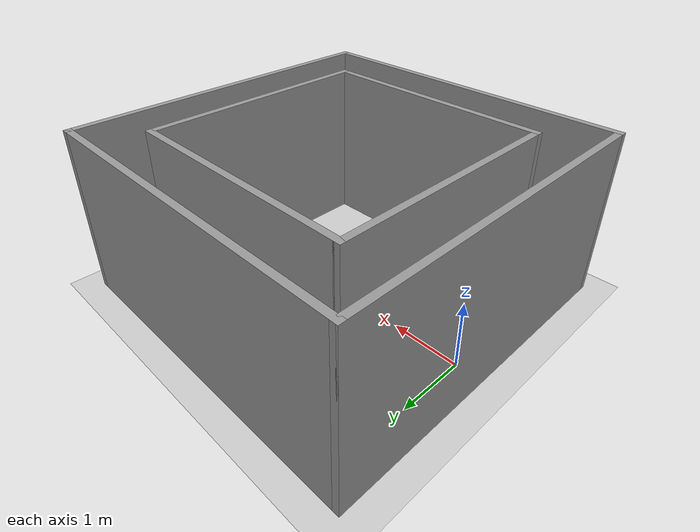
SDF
<sdf version="1.7">
 <world name="default">
  <light name="sun" type="directional">
   <pose>0 0 10 0 -0 0</pose>
   <diffuse>0.8 0.8 0.8 1</diffuse>
   <specular>0.2 0.2 0.2 1</specular>
   <attenuation>
    <range>1000</range>
    <constant>0.9</constant>
    <linear>0.01</linear>
    <quadratic>0.001</quadratic>
   </attenuation>
   <direction>-0.5 0.1 -0.9</direction>
   <spot><inner_angle>0</inner_angle><outer_angle>0</outer_angle><falloff>0</falloff></spot>
  </light>
  <model name="ground_plane">
   <static>1</static>
   <link name="link">
    <collision name="collision">
     <geometry><plane><normal>0 0 1</normal><size>100 100</size></plane></geometry>
     <surface><friction><ode><mu>100</mu><mu2>50</mu2></ode></friction></surface>
    </collision>
    <visual name="visual">
     <cast_shadows>0</cast_shadows>
     <geometry><plane><normal>0 0 1</normal><size>100 100</size></plane></geometry>
     <material>
      <script><uri>file://media/materials/scripts/gazebo.material</uri><name>Gazebo/Grey</name></script>
     </material>
    </visual>
   </link>
  </model>
  <gravity>0 0 -9.8</gravity>
  <magnetic_field>6e-06 2.3e-05 -4.2e-05</magnetic_field>
  <atmosphere type="adiabatic"/>
  <physics type="ode">
   <max_step_size>0.001</max_step_size>
   <real_time_factor>1</real_time_factor>
   <real_time_update_rate>1000</real_time_update_rate>
  </physics>
  <scene><ambient>0.4 0.4 0.4 1</ambient><background>0.7 0.7 0.7 1</background><shadows>1</shadows></scene>
  <spherical_coordinates>
   <surface_model>EARTH_WGS84</surface_model>
   <latitude_deg>0</latitude_deg>
   <longitude_deg>0</longitude_deg>
   <elevation>0</elevation>
   <heading_deg>0</heading_deg>
  </spherical_coordinates>
  <model name="loop">
   <link name="Wall_0">
    <pose>0 2.5 0 0 -0 0</pose>
    <inertial>
     <mass>1</mass>
     <inertia><ixx>1</ixx><ixy>0</ixy><ixz>0</ixz><iyy>1</iyy><iyz>0</iyz><izz>1</izz></inertia>
    </inertial>
    <visual name="Wall_0_Visual">
     <pose>0 0 1.25 0 -0 0</pose>
     <geometry><box><size>5.1 0.1 2.5</size></box></geometry>
     <material>
      <script><uri>file://media/materials/scripts/gazebo.material</uri><name>Gazebo/Grey</name></script>
      <ambient>1 1 1 1</ambient>
      <shader type="pixel"><normal_map>__default__</normal_map></shader>
      <diffuse>0.7 0.7 0.7 1</diffuse>
      <specular>0.01 0.01 0.01 1</specular>
      <emissive>0 0 0 1</emissive>
     </material>
     <meta><layer>0</layer></meta>
    </visual>
    <collision name="Wall_0_Collision">
     <pose>0 0 1.25 0 -0 0</pose>
     <geometry><box><size>5.1 0.1 2.5</size></box></geometry>
     <surface>
      <friction>
       <ode><mu>1</mu><mu2>1</mu2><fdir1>0 0 0</fdir1><slip1>0</slip1><slip2>0</slip2></ode>
       <torsional>
        <coefficient>1</coefficient>
        <patch_radius>0</patch_radius>
        <surface_radius>0</surface_radius>
        <use_patch_radius>1</use_patch_radius>
        <ode><slip>0</slip></ode>
       </torsional>
      </friction>
      <bounce><restitution_coefficient>0</restitution_coefficient><threshold>1e+06</threshold></bounce>
      <contact>
       <collide_without_contact>0</collide_without_contact>
       <collide_without_contact_bitmask>1</collide_without_contact_bitmask>
       <collide_bitmask>1</collide_bitmask>
       <ode>
        <soft_cfm>0</soft_cfm>
        <soft_erp>0.2</soft_erp>
        <kp>1e+13</kp>
        <kd>1</kd>
        <max_vel>0.01</max_vel>
        <min_depth>0</min_depth>
       </ode>
       <bullet>
        <split_impulse>1</split_impulse>
        <split_impulse_penetration_threshold>-0.01</split_impulse_penetration_threshold>
        <soft_cfm>0</soft_cfm>
        <soft_erp>0.2</soft_erp>
        <kp>1e+13</kp>
        <kd>1</kd>
       </bullet>
      </contact>
     </surface>
    </collision>
   </link>
   <link name="Wall_1">
    <pose>2.5 0 0 0 0 -1.5708</pose>
    <inertial>
     <mass>1</mass>
     <inertia><ixx>1</ixx><ixy>0</ixy><ixz>0</ixz><iyy>1</iyy><iyz>0</iyz><izz>1</izz></inertia>
    </inertial>
    <visual name="Wall_1_Visual">
     <pose>0 0 1.25 0 -0 0</pose>
     <geometry><box><size>5.1 0.1 2.5</size></box></geometry>
     <material>
      <script><uri>file://media/materials/scripts/gazebo.material</uri><name>Gazebo/Grey</name></script>
      <ambient>1 1 1 1</ambient>
      <shader type="pixel"><normal_map>__default__</normal_map></shader>
      <diffuse>0.7 0.7 0.7 1</diffuse>
      <specular>0.01 0.01 0.01 1</specular>
      <emissive>0 0 0 1</emissive>
     </material>
     <meta><layer>0</layer></meta>
    </visual>
    <collision name="Wall_1_Collision">
     <pose>0 0 1.25 0 -0 0</pose>
     <geometry><box><size>5.1 0.1 2.5</size></box></geometry>
     <surface>
      <friction>
       <ode><mu>1</mu><mu2>1</mu2><fdir1>0 0 0</fdir1><slip1>0</slip1><slip2>0</slip2></ode>
       <torsional>
        <coefficient>1</coefficient>
        <patch_radius>0</patch_radius>
        <surface_radius>0</surface_radius>
        <use_patch_radius>1</use_patch_radius>
        <ode><slip>0</slip></ode>
       </torsional>
      </friction>
      <bounce><restitution_coefficient>0</restitution_coefficient><threshold>1e+06</threshold></bounce>
      <contact>
       <collide_without_contact>0</collide_without_contact>
       <collide_without_contact_bitmask>1</collide_without_contact_bitmask>
       <collide_bitmask>1</collide_bitmask>
       <ode>
        <soft_cfm>0</soft_cfm>
        <soft_erp>0.2</soft_erp>
        <kp>1e+13</kp>
        <kd>1</kd>
        <max_vel>0.01</max_vel>
        <min_depth>0</min_depth>
       </ode>
       <bullet>
        <split_impulse>1</split_impulse>
        <split_impulse_penetration_threshold>-0.01</split_impulse_penetration_threshold>
        <soft_cfm>0</soft_cfm>
        <soft_erp>0.2</soft_erp>
        <kp>1e+13</kp>
        <kd>1</kd>
       </bullet>
      </contact>
     </surface>
    </collision>
   </link>
   <link name="Wall_2">
    <pose>0 -2.5 0 0 -0 3.14159</pose>
    <inertial>
     <mass>1</mass>
     <inertia><ixx>1</ixx><ixy>0</ixy><ixz>0</ixz><iyy>1</iyy><iyz>0</iyz><izz>1</izz></inertia>
    </inertial>
    <visual name="Wall_2_Visual">
     <pose>0 0 1.25 0 -0 0</pose>
     <geometry><box><size>5.1 0.1 2.5</size></box></geometry>
     <material>
      <script><uri>file://media/materials/scripts/gazebo.material</uri><name>Gazebo/Grey</name></script>
      <ambient>1 1 1 1</ambient>
      <shader type="pixel"><normal_map>__default__</normal_map></shader>
      <diffuse>0.7 0.7 0.7 1</diffuse>
      <specular>0.01 0.01 0.01 1</specular>
      <emissive>0 0 0 1</emissive>
     </material>
     <meta><layer>0</layer></meta>
    </visual>
    <collision name="Wall_2_Collision">
     <pose>0 0 1.25 0 -0 0</pose>
     <geometry><box><size>5.1 0.1 2.5</size></box></geometry>
     <surface>
      <friction>
       <ode><mu>1</mu><mu2>1</mu2><fdir1>0 0 0</fdir1><slip1>0</slip1><slip2>0</slip2></ode>
       <torsional>
        <coefficient>1</coefficient>
        <patch_radius>0</patch_radius>
        <surface_radius>0</surface_radius>
        <use_patch_radius>1</use_patch_radius>
        <ode><slip>0</slip></ode>
       </torsional>
      </friction>
      <bounce><restitution_coefficient>0</restitution_coefficient><threshold>1e+06</threshold></bounce>
      <contact>
       <collide_without_contact>0</collide_without_contact>
       <collide_without_contact_bitmask>1</collide_without_contact_bitmask>
       <collide_bitmask>1</collide_bitmask>
       <ode>
        <soft_cfm>0</soft_cfm>
        <soft_erp>0.2</soft_erp>
        <kp>1e+13</kp>
        <kd>1</kd>
        <max_vel>0.01</max_vel>
        <min_depth>0</min_depth>
       </ode>
       <bullet>
        <split_impulse>1</split_impulse>
        <split_impulse_penetration_threshold>-0.01</split_impulse_penetration_threshold>
        <soft_cfm>0</soft_cfm>
        <soft_erp>0.2</soft_erp>
        <kp>1e+13</kp>
        <kd>1</kd>
       </bullet>
      </contact>
     </surface>
    </collision>
   </link>
   <link name="Wall_3">
    <pose>-2.5 0 0 0 -0 1.5708</pose>
    <inertial>
     <mass>1</mass>
     <inertia><ixx>1</ixx><ixy>0</ixy><ixz>0</ixz><iyy>1</iyy><iyz>0</iyz><izz>1</izz></inertia>
    </inertial>
    <visual name="Wall_3_Visual">
     <pose>0 0 1.25 0 -0 0</pose>
     <geometry><box><size>5.1 0.1 2.5</size></box></geometry>
     <material>
      <script><uri>file://media/materials/scripts/gazebo.material</uri><name>Gazebo/Grey</name></script>
      <ambient>1 1 1 1</ambient>
      <shader type="pixel"><normal_map>__default__</normal_map></shader>
      <diffuse>0.7 0.7 0.7 1</diffuse>
      <specular>0.01 0.01 0.01 1</specular>
      <emissive>0 0 0 1</emissive>
     </material>
     <meta><layer>0</layer></meta>
    </visual>
    <collision name="Wall_3_Collision">
     <pose>0 0 1.25 0 -0 0</pose>
     <geometry><box><size>5.1 0.1 2.5</size></box></geometry>
     <surface>
      <friction>
       <ode><mu>1</mu><mu2>1</mu2><fdir1>0 0 0</fdir1><slip1>0</slip1><slip2>0</slip2></ode>
       <torsional>
        <coefficient>1</coefficient>
        <patch_radius>0</patch_radius>
        <surface_radius>0</surface_radius>
        <use_patch_radius>1</use_patch_radius>
        <ode><slip>0</slip></ode>
       </torsional>
      </friction>
      <bounce><restitution_coefficient>0</restitution_coefficient><threshold>1e+06</threshold></bounce>
      <contact>
       <collide_without_contact>0</collide_without_contact>
       <collide_without_contact_bitmask>1</collide_without_contact_bitmask>
       <collide_bitmask>1</collide_bitmask>
       <ode>
        <soft_cfm>0</soft_cfm>
        <soft_erp>0.2</soft_erp>
        <kp>1e+13</kp>
        <kd>1</kd>
        <max_vel>0.01</max_vel>
        <min_depth>0</min_depth>
       </ode>
       <bullet>
        <split_impulse>1</split_impulse>
        <split_impulse_penetration_threshold>-0.01</split_impulse_penetration_threshold>
        <soft_cfm>0</soft_cfm>
        <soft_erp>0.2</soft_erp>
        <kp>1e+13</kp>
        <kd>1</kd>
       </bullet>
      </contact>
     </surface>
    </collision>
   </link>
   <link name="Wall_5">
    <pose>0 1.75 0 0 -0 0</pose>
    <inertial>
     <mass>1</mass>
     <inertia><ixx>1</ixx><ixy>0</ixy><ixz>0</ixz><iyy>1</iyy><iyz>0</iyz><izz>1</izz></inertia>
    </inertial>
    <visual name="Wall_5_Visual">
     <pose>0 0 1.25 0 -0 0</pose>
     <geometry><box><size>3.6 0.1 2.5</size></box></geometry>
     <material>
      <script><uri>file://media/materials/scripts/gazebo.material</uri><name>Gazebo/Grey</name></script>
      <ambient>1 1 1 1</ambient>
      <shader type="pixel"><normal_map>__default__</normal_map></shader>
      <diffuse>0.7 0.7 0.7 1</diffuse>
      <specular>0.01 0.01 0.01 1</specular>
      <emissive>0 0 0 1</emissive>
     </material>
     <meta><layer>0</layer></meta>
    </visual>
    <collision name="Wall_5_Collision">
     <pose>0 0 1.25 0 -0 0</pose>
     <geometry><box><size>3.6 0.1 2.5</size></box></geometry>
     <surface>
      <friction>
       <ode><mu>1</mu><mu2>1</mu2><fdir1>0 0 0</fdir1><slip1>0</slip1><slip2>0</slip2></ode>
       <torsional>
        <coefficient>1</coefficient>
        <patch_radius>0</patch_radius>
        <surface_radius>0</surface_radius>
        <use_patch_radius>1</use_patch_radius>
        <ode><slip>0</slip></ode>
       </torsional>
      </friction>
      <bounce><restitution_coefficient>0</restitution_coefficient><threshold>1e+06</threshold></bounce>
      <contact>
       <collide_without_contact>0</collide_without_contact>
       <collide_without_contact_bitmask>1</collide_without_contact_bitmask>
       <collide_bitmask>1</collide_bitmask>
       <ode>
        <soft_cfm>0</soft_cfm>
        <soft_erp>0.2</soft_erp>
        <kp>1e+13</kp>
        <kd>1</kd>
        <max_vel>0.01</max_vel>
        <min_depth>0</min_depth>
       </ode>
       <bullet>
        <split_impulse>1</split_impulse>
        <split_impulse_penetration_threshold>-0.01</split_impulse_penetration_threshold>
        <soft_cfm>0</soft_cfm>
        <soft_erp>0.2</soft_erp>
        <kp>1e+13</kp>
        <kd>1</kd>
       </bullet>
      </contact>
     </surface>
    </collision>
   </link>
   <link name="Wall_6">
    <pose>1.75 0 0 0 0 -1.5708</pose>
    <inertial>
     <mass>1</mass>
     <inertia><ixx>1</ixx><ixy>0</ixy><ixz>0</ixz><iyy>1</iyy><iyz>0</iyz><izz>1</izz></inertia>
    </inertial>
    <visual name="Wall_6_Visual">
     <pose>0 0 1.25 0 -0 0</pose>
     <geometry><box><size>3.6 0.1 2.5</size></box></geometry>
     <material>
      <script><uri>file://media/materials/scripts/gazebo.material</uri><name>Gazebo/Grey</name></script>
      <ambient>1 1 1 1</ambient>
      <shader type="pixel"><normal_map>__default__</normal_map></shader>
      <diffuse>0.7 0.7 0.7 1</diffuse>
      <specular>0.01 0.01 0.01 1</specular>
      <emissive>0 0 0 1</emissive>
     </material>
     <meta><layer>0</layer></meta>
    </visual>
    <collision name="Wall_6_Collision">
     <pose>0 0 1.25 0 -0 0</pose>
     <geometry><box><size>3.6 0.1 2.5</size></box></geometry>
     <surface>
      <friction>
       <ode><mu>1</mu><mu2>1</mu2><fdir1>0 0 0</fdir1><slip1>0</slip1><slip2>0</slip2></ode>
       <torsional>
        <coefficient>1</coefficient>
        <patch_radius>0</patch_radius>
        <surface_radius>0</surface_radius>
        <use_patch_radius>1</use_patch_radius>
        <ode><slip>0</slip></ode>
       </torsional>
      </friction>
      <bounce><restitution_coefficient>0</restitution_coefficient><threshold>1e+06</threshold></bounce>
      <contact>
       <collide_without_contact>0</collide_without_contact>
       <collide_without_contact_bitmask>1</collide_without_contact_bitmask>
       <collide_bitmask>1</collide_bitmask>
       <ode>
        <soft_cfm>0</soft_cfm>
        <soft_erp>0.2</soft_erp>
        <kp>1e+13</kp>
        <kd>1</kd>
        <max_vel>0.01</max_vel>
        <min_depth>0</min_depth>
       </ode>
       <bullet>
        <split_impulse>1</split_impulse>
        <split_impulse_penetration_threshold>-0.01</split_impulse_penetration_threshold>
        <soft_cfm>0</soft_cfm>
        <soft_erp>0.2</soft_erp>
        <kp>1e+13</kp>
        <kd>1</kd>
       </bullet>
      </contact>
     </surface>
    </collision>
   </link>
   <link name="Wall_7">
    <pose>0 -1.75 0 0 -0 3.14159</pose>
    <inertial>
     <mass>1</mass>
     <inertia><ixx>1</ixx><ixy>0</ixy><ixz>0</ixz><iyy>1</iyy><iyz>0</iyz><izz>1</izz></inertia>
    </inertial>
    <visual name="Wall_7_Visual">
     <pose>0 0 1.25 0 -0 0</pose>
     <geometry><box><size>3.6 0.1 2.5</size></box></geometry>
     <material>
      <script><uri>file://media/materials/scripts/gazebo.material</uri><name>Gazebo/Grey</name></script>
      <ambient>1 1 1 1</ambient>
      <shader type="pixel"><normal_map>__default__</normal_map></shader>
      <diffuse>0.7 0.7 0.7 1</diffuse>
      <specular>0.01 0.01 0.01 1</specular>
      <emissive>0 0 0 1</emissive>
     </material>
     <meta><layer>0</layer></meta>
    </visual>
    <collision name="Wall_7_Collision">
     <pose>0 0 1.25 0 -0 0</pose>
     <geometry><box><size>3.6 0.1 2.5</size></box></geometry>
     <surface>
      <friction>
       <ode><mu>1</mu><mu2>1</mu2><fdir1>0 0 0</fdir1><slip1>0</slip1><slip2>0</slip2></ode>
       <torsional>
        <coefficient>1</coefficient>
        <patch_radius>0</patch_radius>
        <surface_radius>0</surface_radius>
        <use_patch_radius>1</use_patch_radius>
        <ode><slip>0</slip></ode>
       </torsional>
      </friction>
      <bounce><restitution_coefficient>0</restitution_coefficient><threshold>1e+06</threshold></bounce>
      <contact>
       <collide_without_contact>0</collide_without_contact>
       <collide_without_contact_bitmask>1</collide_without_contact_bitmask>
       <collide_bitmask>1</collide_bitmask>
       <ode>
        <soft_cfm>0</soft_cfm>
        <soft_erp>0.2</soft_erp>
        <kp>1e+13</kp>
        <kd>1</kd>
        <max_vel>0.01</max_vel>
        <min_depth>0</min_depth>
       </ode>
       <bullet>
        <split_impulse>1</split_impulse>
        <split_impulse_penetration_threshold>-0.01</split_impulse_penetration_threshold>
        <soft_cfm>0</soft_cfm>
        <soft_erp>0.2</soft_erp>
        <kp>1e+13</kp>
        <kd>1</kd>
       </bullet>
      </contact>
     </surface>
    </collision>
   </link>
   <link name="Wall_8">
    <pose>-1.75 0 0 0 -0 1.5708</pose>
    <inertial>
     <mass>1</mass>
     <inertia><ixx>1</ixx><ixy>0</ixy><ixz>0</ixz><iyy>1</iyy><iyz>0</iyz><izz>1</izz></inertia>
    </inertial>
    <visual name="Wall_8_Visual">
     <pose>0 0 1.25 0 -0 0</pose>
     <geometry><box><size>3.6 0.1 2.5</size></box></geometry>
     <material>
      <script><uri>file://media/materials/scripts/gazebo.material</uri><name>Gazebo/Grey</name></script>
      <ambient>1 1 1 1</ambient>
      <shader type="pixel"><normal_map>__default__</normal_map></shader>
      <diffuse>0.7 0.7 0.7 1</diffuse>
      <specular>0.01 0.01 0.01 1</specular>
      <emissive>0 0 0 1</emissive>
     </material>
     <meta><layer>0</layer></meta>
    </visual>
    <collision name="Wall_8_Collision">
     <pose>0 0 1.25 0 -0 0</pose>
     <geometry><box><size>3.6 0.1 2.5</size></box></geometry>
     <surface>
      <friction>
       <ode><mu>1</mu><mu2>1</mu2><fdir1>0 0 0</fdir1><slip1>0</slip1><slip2>0</slip2></ode>
       <torsional>
        <coefficient>1</coefficient>
        <patch_radius>0</patch_radius>
        <surface_radius>0</surface_radius>
        <use_patch_radius>1</use_patch_radius>
        <ode><slip>0</slip></ode>
       </torsional>
      </friction>
      <bounce><restitution_coefficient>0</restitution_coefficient><threshold>1e+06</threshold></bounce>
      <contact>
       <collide_without_contact>0</collide_without_contact>
       <collide_without_contact_bitmask>1</collide_without_contact_bitmask>
       <collide_bitmask>1</collide_bitmask>
       <ode>
        <soft_cfm>0</soft_cfm>
        <soft_erp>0.2</soft_erp>
        <kp>1e+13</kp>
        <kd>1</kd>
        <max_vel>0.01</max_vel>
        <min_depth>0</min_depth>
       </ode>
       <bullet>
        <split_impulse>1</split_impulse>
        <split_impulse_penetration_threshold>-0.01</split_impulse_penetration_threshold>
        <soft_cfm>0</soft_cfm>
        <soft_erp>0.2</soft_erp>
        <kp>1e+13</kp>
        <kd>1</kd>
       </bullet>
      </contact>
     </surface>
    </collision>
   </link>
   <static>1</static>
   <pose>2.14896 -0.104438 0 0 -0 0</pose>
  </model>
  <model name="turtlebot3_burger">
   <pose>0.695788 0.086437 -0.001004 -1.2e-05 0.007741 0.192472</pose>
   <scale>1 1 1</scale>
   <link name="base_footprint">
    <pose>0.695788 0.086437 -0.001004 -1.2e-05 0.007741 0.192472</pose>
    <velocity>-0.00085 0.002383 1.8e-05 2.2e-05 -7.6e-05 0.037903</velocity>
    <acceleration>-0.000114 4.9e-05 0 2.9e-05 -0.000128 0.001362</acceleration>
    <wrench>-0.000108 4.6e-05 0 0 -0 0</wrench>
   </link>
   <link name="wheel_left_link">
    <pose>0.680735 0.165009 0.031997 -1.3486 -1.56749 -0.029732</pose>
    <velocity>-0.003831 0.001812 6e-06 0.000624 -5.1e-05 0.0379</velocity>
    <acceleration>-0.000206 -8e-05 0 2e-06 1.4e-05 0.002525</acceleration>
    <wrench>-6e-06 -2e-06 0 0 -0 0</wrench>
   </link>
   <link name="wheel_right_link">
    <pose>0.711341 0.007963 0.031999 -1.36055 1.56733 0.40271</pose>
    <velocity>0.002122 0.002972 5e-06 0.000522 0.000133 0.037904</velocity>
    <acceleration>-3.6e-05 0.000187 0 0 8e-06 0.002525</acceleration>
    <wrench>-1e-06 5e-06 0 0 -0 0</wrench>
   </link>
  </model>
 </world>
</sdf>
